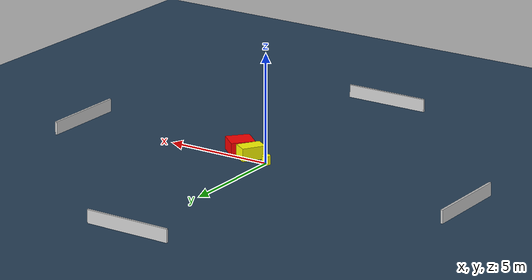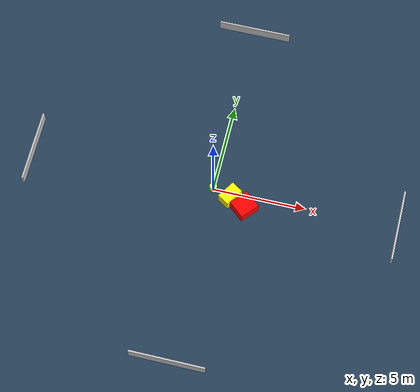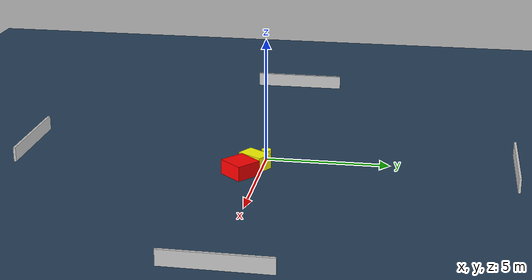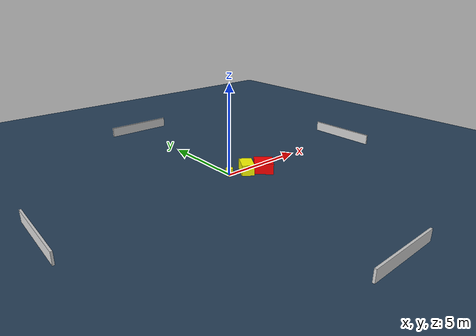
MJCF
<?xml version="1.0" ?>
<mujoco model="generated_environment">
  <option timestep="0.01" integrator="RK4" cone="elliptic"/>
  <default>
    <geom density="1"/>
  </default>
  <asset>
    <texture builtin="gradient" height="3072" name="skybox" rgb1="0.3 0.5 0.7" rgb2="0 0 0" type="skybox" width="512"/>
    <texture builtin="checker" height="300" name="groundplane" rgb1="0.2 0.3 0.4" rgb2="0.1 0.2 0.3" type="2d" width="300"/>
    <material name="groundplane" reflectance="0.2" texrepeat="5 5" texture="groundplane"/>
  </asset>
  <worldbody>
    <light dir="0 0 -1" directional="true" pos="0 0 1.5"/>
    <geom condim="3" friction="0.5 0.005 0.001" material="groundplane" name="floor" pos="0 0 0" size="0 0 0.05" type="plane"/>
    <body name="walls">
      <geom name="wall_1" condim="4" pos="-10.0 0.0 0.3" rgba="0.800000011920929 0.800000011920929 0.800000011920929 1.0" size="0.05 2.0 0.3" type="box"/>
      <geom name="wall_2" condim="4" pos="10.0 0.0 0.3" rgba="0.800000011920929 0.800000011920929 0.800000011920929 1.0" size="0.05 2.0 0.3" type="box"/>
      <geom name="wall_3" condim="4" pos="0.0 -10.0 0.3" rgba="0.800000011920929 0.800000011920929 0.800000011920929 1.0" size="2.0 0.05 0.3" type="box"/>
      <geom name="wall_4" condim="4" pos="0.0 10.0 0.3" rgba="0.800000011920929 0.800000011920929 0.800000011920929 1.0" size="2.0 0.05 0.3" type="box"/>
    </body>
    <body name="robot">
      <joint name="joint_x" type="slide" pos="0 0 0" axis="1 0 0"/>
      <joint name="joint_y" type="slide" pos="0 0 0" axis="0 1 0"/>
      <geom name="robot" type="cylinder" pos="0.0 0.0 0.2" size="0.2 0.2 0.0" mass="5.0" friction="1.0 0.005 0.0001" condim="4" rgba="1.0 1.0 0.0 1.0"/>
    </body>
    <body name="obstacle_1_movable">
      <geom name="obstacle_1_movable" condim="4" pos="0.9883904264443174 -0.2947742466230996 0.3" euler="0 0 237.74401238676168" friction="0.0 0.005 0.001" rgba="1.0 1.0 0.0 1.0" size="0.5477244605260737 0.35015145665127195 0.3" type="box" mass="0.1"/>
      <joint type="free"/>
    </body>
    <body name="obstacle_2_static">
      <geom name="obstacle_2_static" condim="4" pos="1.8535093662868332 -0.7256687339031489 0.3" euler="0 0 229.1708848338987" friction="0.0 0.005 0.001" rgba="1.0 0.0 0.0 1.0" size="0.5537742208960817 0.5253421518986241 0.3" type="box"/>
    </body>
  </worldbody>
  <actuator>
    <motor name="actuator_x" joint="joint_x" gear="1" ctrlrange="-1 1"/>
    <motor name="actuator_y" joint="joint_y" gear="1" ctrlrange="-1 1"/>
  </actuator>
</mujoco>
